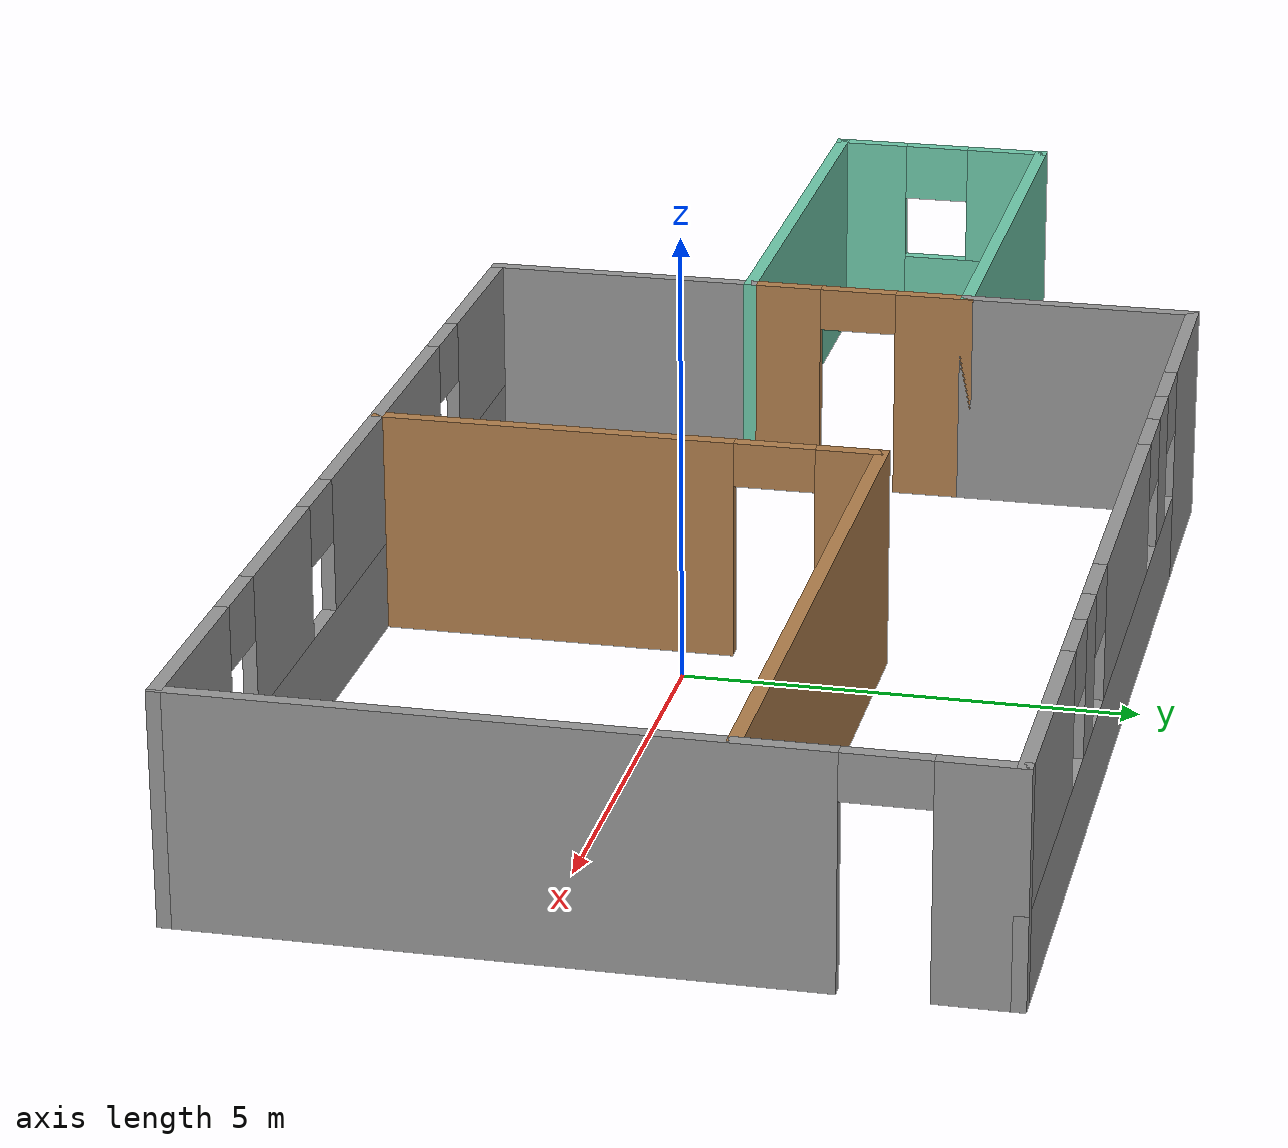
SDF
<?xml version='1.0'?>
<sdf version='1.6'>
  <model name='myworld'>
    <pose frame=''>-2.44301 0.59064 0 0 -0 0</pose>
    <link name='Wall_13'>
      <pose frame=''>2.925 4.175 0 0 -0 0</pose>
      <visual name='Wall_13_Visual_0'>
        <pose frame=''>-5.43133 0 1.25 0 -0 0</pose>
        <geometry>
          <box>
            <size>2.13733 0.15 2.5</size>
          </box>
        </geometry>
        <material>
          <script>
            <uri>file://media/materials/scripts/gazebo.material</uri>
            <name>Gazebo/Grey</name>
          </script>
          <ambient>1 1 1 1</ambient>
        </material>
        <meta>
          <layer>0</layer>
        </meta>
      </visual>
      <collision name='Wall_13_Collision_0'>
        <geometry>
          <box>
            <size>2.13733 0.15 2.5</size>
          </box>
        </geometry>
        <pose frame=''>-5.43133 0 1.25 0 -0 0</pose>
      </collision>
      <visual name='Wall_13_Visual_1'>
        <pose frame=''>1.06867 0 0.5 0 -0 0</pose>
        <geometry>
          <box>
            <size>10.8627 0.15 1</size>
          </box>
        </geometry>
        <material>
          <script>
            <uri>file://media/materials/scripts/gazebo.material</uri>
            <name>Gazebo/Grey</name>
          </script>
          <ambient>1 1 1 1</ambient>
        </material>
        <meta>
          <layer>0</layer>
        </meta>
      </visual>
      <collision name='Wall_13_Collision_1'>
        <geometry>
          <box>
            <size>10.8627 0.15 1</size>
          </box>
        </geometry>
        <pose frame=''>1.06867 0 0.5 0 -0 0</pose>
      </collision>
      <visual name='Wall_13_Visual_2'>
        <pose frame=''>-3.19681 0 1.75 0 -0 0</pose>
        <geometry>
          <box>
            <size>0.73171 0.15 1.5</size>
          </box>
        </geometry>
        <material>
          <script>
            <uri>file://media/materials/scripts/gazebo.material</uri>
            <name>Gazebo/Grey</name>
          </script>
          <ambient>1 1 1 1</ambient>
        </material>
        <meta>
          <layer>0</layer>
        </meta>
      </visual>
      <collision name='Wall_13_Collision_2'>
        <geometry>
          <box>
            <size>0.73171 0.15 1.5</size>
          </box>
        </geometry>
        <pose frame=''>-3.19681 0 1.75 0 -0 0</pose>
      </collision>
      <visual name='Wall_13_Visual_3'>
        <pose frame=''>-0.28964 0 1.75 0 -0 0</pose>
        <geometry>
          <box>
            <size>3.48263 0.15 1.5</size>
          </box>
        </geometry>
        <material>
          <script>
            <uri>file://media/materials/scripts/gazebo.material</uri>
            <name>Gazebo/Grey</name>
          </script>
          <ambient>1 1 1 1</ambient>
        </material>
        <meta>
          <layer>0</layer>
        </meta>
      </visual>
      <collision name='Wall_13_Collision_3'>
        <geometry>
          <box>
            <size>3.48263 0.15 1.5</size>
          </box>
        </geometry>
        <pose frame=''>-0.28964 0 1.75 0 -0 0</pose>
      </collision>
      <visual name='Wall_13_Visual_4'>
        <pose frame=''>2.58318 0 1.75 0 -0 0</pose>
        <geometry>
          <box>
            <size>0.663011 0.15 1.5</size>
          </box>
        </geometry>
        <material>
          <script>
            <uri>file://media/materials/scripts/gazebo.material</uri>
            <name>Gazebo/Grey</name>
          </script>
          <ambient>1 1 1 1</ambient>
        </material>
        <meta>
          <layer>0</layer>
        </meta>
      </visual>
      <collision name='Wall_13_Collision_4'>
        <geometry>
          <box>
            <size>0.663011 0.15 1.5</size>
          </box>
        </geometry>
        <pose frame=''>2.58318 0 1.75 0 -0 0</pose>
      </collision>
      <visual name='Wall_13_Visual_5'>
        <pose frame=''>5.10734 0 1.75 0 -0 0</pose>
        <geometry>
          <box>
            <size>2.78531 0.15 1.5</size>
          </box>
        </geometry>
        <material>
          <script>
            <uri>file://media/materials/scripts/gazebo.material</uri>
            <name>Gazebo/Grey</name>
          </script>
          <ambient>1 1 1 1</ambient>
        </material>
        <meta>
          <layer>0</layer>
        </meta>
      </visual>
      <collision name='Wall_13_Collision_5'>
        <geometry>
          <box>
            <size>2.78531 0.15 1.5</size>
          </box>
        </geometry>
        <pose frame=''>5.10734 0 1.75 0 -0 0</pose>
      </collision>
      <visual name='Wall_13_Visual_6'>
        <pose frame=''>-3.96267 0 2.15 0 -0 0</pose>
        <geometry>
          <box>
            <size>0.8 0.15 0.7</size>
          </box>
        </geometry>
        <material>
          <script>
            <uri>file://media/materials/scripts/gazebo.material</uri>
            <name>Gazebo/Grey</name>
          </script>
          <ambient>1 1 1 1</ambient>
        </material>
        <meta>
          <layer>0</layer>
        </meta>
      </visual>
      <collision name='Wall_13_Collision_6'>
        <geometry>
          <box>
            <size>0.8 0.15 0.7</size>
          </box>
        </geometry>
        <pose frame=''>-3.96267 0 2.15 0 -0 0</pose>
      </collision>
      <visual name='Wall_13_Visual_7'>
        <pose frame=''>-2.43096 0 2.15 0 -0 0</pose>
        <geometry>
          <box>
            <size>0.8 0.15 0.7</size>
          </box>
        </geometry>
        <material>
          <script>
            <uri>file://media/materials/scripts/gazebo.material</uri>
            <name>Gazebo/Grey</name>
          </script>
          <ambient>1 1 1 1</ambient>
        </material>
        <meta>
          <layer>0</layer>
        </meta>
      </visual>
      <collision name='Wall_13_Collision_7'>
        <geometry>
          <box>
            <size>0.8 0.15 0.7</size>
          </box>
        </geometry>
        <pose frame=''>-2.43096 0 2.15 0 -0 0</pose>
      </collision>
      <visual name='Wall_13_Visual_8'>
        <pose frame=''>1.85168 0 2.15 0 -0 0</pose>
        <geometry>
          <box>
            <size>0.8 0.15 0.7</size>
          </box>
        </geometry>
        <material>
          <script>
            <uri>file://media/materials/scripts/gazebo.material</uri>
            <name>Gazebo/Grey</name>
          </script>
          <ambient>1 1 1 1</ambient>
        </material>
        <meta>
          <layer>0</layer>
        </meta>
      </visual>
      <collision name='Wall_13_Collision_8'>
        <geometry>
          <box>
            <size>0.8 0.15 0.7</size>
          </box>
        </geometry>
        <pose frame=''>1.85168 0 2.15 0 -0 0</pose>
      </collision>
      <visual name='Wall_13_Visual_9'>
        <pose frame=''>3.31469 0 2.15 0 -0 0</pose>
        <geometry>
          <box>
            <size>0.8 0.15 0.7</size>
          </box>
        </geometry>
        <material>
          <script>
            <uri>file://media/materials/scripts/gazebo.material</uri>
            <name>Gazebo/Grey</name>
          </script>
          <ambient>1 1 1 1</ambient>
        </material>
        <meta>
          <layer>0</layer>
        </meta>
      </visual>
      <collision name='Wall_13_Collision_9'>
        <geometry>
          <box>
            <size>0.8 0.15 0.7</size>
          </box>
        </geometry>
        <pose frame=''>3.31469 0 2.15 0 -0 0</pose>
      </collision>
    </link>
    <link name='Wall_14'>
      <pose frame=''>9.35 0 0 0 0 -1.5708</pose>
      <visual name='Wall_14_Visual_0'>
        <pose frame=''>-3.79422 0 1.25 0 -0 0</pose>
        <geometry>
          <box>
            <size>0.911563 0.15 2.5</size>
          </box>
        </geometry>
        <material>
          <script>
            <uri>file://media/materials/scripts/gazebo.material</uri>
            <name>Gazebo/Grey</name>
          </script>
          <ambient>1 1 1 1</ambient>
        </material>
        <meta>
          <layer>0</layer>
        </meta>
      </visual>
      <collision name='Wall_14_Collision_0'>
        <geometry>
          <box>
            <size>0.911563 0.15 2.5</size>
          </box>
        </geometry>
        <pose frame=''>-3.79422 0 1.25 0 -0 0</pose>
      </collision>
      <visual name='Wall_14_Visual_1'>
        <pose frame=''>0.905782 0 1.25 0 -0 0</pose>
        <geometry>
          <box>
            <size>6.68844 0.15 2.5</size>
          </box>
        </geometry>
        <material>
          <script>
            <uri>file://media/materials/scripts/gazebo.material</uri>
            <name>Gazebo/Grey</name>
          </script>
          <ambient>1 1 1 1</ambient>
        </material>
        <meta>
          <layer>0</layer>
        </meta>
      </visual>
      <collision name='Wall_14_Collision_1'>
        <geometry>
          <box>
            <size>6.68844 0.15 2.5</size>
          </box>
        </geometry>
        <pose frame=''>0.905782 0 1.25 0 -0 0</pose>
      </collision>
      <visual name='Wall_14_Visual_2'>
        <pose frame=''>-2.88844 0 2.25 0 -0 0</pose>
        <geometry>
          <box>
            <size>0.9 0.15 0.5</size>
          </box>
        </geometry>
        <material>
          <script>
            <uri>file://media/materials/scripts/gazebo.material</uri>
            <name>Gazebo/Grey</name>
          </script>
          <ambient>1 1 1 1</ambient>
        </material>
        <meta>
          <layer>0</layer>
        </meta>
      </visual>
      <collision name='Wall_14_Collision_2'>
        <geometry>
          <box>
            <size>0.9 0.15 0.5</size>
          </box>
        </geometry>
        <pose frame=''>-2.88844 0 2.25 0 -0 0</pose>
      </collision>
    </link>
    <link name='Wall_15'>
      <pose frame=''>2.925 -4.175 0 0 -0 3.14159</pose>
      <visual name='Wall_15_Visual_0'>
        <pose frame=''>-5.43557 0 1.25 0 -0 0</pose>
        <geometry>
          <box>
            <size>2.12887 0.15 2.5</size>
          </box>
        </geometry>
        <material>
          <script>
            <uri>file://media/materials/scripts/gazebo.material</uri>
            <name>Gazebo/Grey</name>
          </script>
          <ambient>1 1 1 1</ambient>
        </material>
        <meta>
          <layer>0</layer>
        </meta>
      </visual>
      <collision name='Wall_15_Collision_0'>
        <geometry>
          <box>
            <size>2.12887 0.15 2.5</size>
          </box>
        </geometry>
        <pose frame=''>-5.43557 0 1.25 0 -0 0</pose>
      </collision>
      <visual name='Wall_15_Visual_1'>
        <pose frame=''>1.06443 0 0.5 0 -0 0</pose>
        <geometry>
          <box>
            <size>10.8711 0.15 1</size>
          </box>
        </geometry>
        <material>
          <script>
            <uri>file://media/materials/scripts/gazebo.material</uri>
            <name>Gazebo/Grey</name>
          </script>
          <ambient>1 1 1 1</ambient>
        </material>
        <meta>
          <layer>0</layer>
        </meta>
      </visual>
      <collision name='Wall_15_Collision_1'>
        <geometry>
          <box>
            <size>10.8711 0.15 1</size>
          </box>
        </geometry>
        <pose frame=''>1.06443 0 0.5 0 -0 0</pose>
      </collision>
      <visual name='Wall_15_Visual_2'>
        <pose frame=''>-2.59486 0 1.75 0 -0 0</pose>
        <geometry>
          <box>
            <size>1.95254 0.15 1.5</size>
          </box>
        </geometry>
        <material>
          <script>
            <uri>file://media/materials/scripts/gazebo.material</uri>
            <name>Gazebo/Grey</name>
          </script>
          <ambient>1 1 1 1</ambient>
        </material>
        <meta>
          <layer>0</layer>
        </meta>
      </visual>
      <collision name='Wall_15_Collision_2'>
        <geometry>
          <box>
            <size>1.95254 0.15 1.5</size>
          </box>
        </geometry>
        <pose frame=''>-2.59486 0 1.75 0 -0 0</pose>
      </collision>
      <visual name='Wall_15_Visual_3'>
        <pose frame=''>1.32578 0 1.75 0 -0 0</pose>
        <geometry>
          <box>
            <size>4.28873 0.15 1.5</size>
          </box>
        </geometry>
        <material>
          <script>
            <uri>file://media/materials/scripts/gazebo.material</uri>
            <name>Gazebo/Grey</name>
          </script>
          <ambient>1 1 1 1</ambient>
        </material>
        <meta>
          <layer>0</layer>
        </meta>
      </visual>
      <collision name='Wall_15_Collision_3'>
        <geometry>
          <box>
            <size>4.28873 0.15 1.5</size>
          </box>
        </geometry>
        <pose frame=''>1.32578 0 1.75 0 -0 0</pose>
      </collision>
      <visual name='Wall_15_Visual_4'>
        <pose frame=''>5.38507 0 1.75 0 -0 0</pose>
        <geometry>
          <box>
            <size>2.22986 0.15 1.5</size>
          </box>
        </geometry>
        <material>
          <script>
            <uri>file://media/materials/scripts/gazebo.material</uri>
            <name>Gazebo/Grey</name>
          </script>
          <ambient>1 1 1 1</ambient>
        </material>
        <meta>
          <layer>0</layer>
        </meta>
      </visual>
      <collision name='Wall_15_Collision_4'>
        <geometry>
          <box>
            <size>2.22986 0.15 1.5</size>
          </box>
        </geometry>
        <pose frame=''>5.38507 0 1.75 0 -0 0</pose>
      </collision>
      <visual name='Wall_15_Visual_5'>
        <pose frame=''>-3.97113 0 2.15 0 -0 0</pose>
        <geometry>
          <box>
            <size>0.8 0.15 0.7</size>
          </box>
        </geometry>
        <material>
          <script>
            <uri>file://media/materials/scripts/gazebo.material</uri>
            <name>Gazebo/Grey</name>
          </script>
          <ambient>1 1 1 1</ambient>
        </material>
        <meta>
          <layer>0</layer>
        </meta>
      </visual>
      <collision name='Wall_15_Collision_5'>
        <geometry>
          <box>
            <size>0.8 0.15 0.7</size>
          </box>
        </geometry>
        <pose frame=''>-3.97113 0 2.15 0 -0 0</pose>
      </collision>
      <visual name='Wall_15_Visual_6'>
        <pose frame=''>-1.21859 0 2.15 0 -0 0</pose>
        <geometry>
          <box>
            <size>0.8 0.15 0.7</size>
          </box>
        </geometry>
        <material>
          <script>
            <uri>file://media/materials/scripts/gazebo.material</uri>
            <name>Gazebo/Grey</name>
          </script>
          <ambient>1 1 1 1</ambient>
        </material>
        <meta>
          <layer>0</layer>
        </meta>
      </visual>
      <collision name='Wall_15_Collision_6'>
        <geometry>
          <box>
            <size>0.8 0.15 0.7</size>
          </box>
        </geometry>
        <pose frame=''>-1.21859 0 2.15 0 -0 0</pose>
      </collision>
      <visual name='Wall_15_Visual_7'>
        <pose frame=''>3.87014 0 2.15 0 -0 0</pose>
        <geometry>
          <box>
            <size>0.8 0.15 0.7</size>
          </box>
        </geometry>
        <material>
          <script>
            <uri>file://media/materials/scripts/gazebo.material</uri>
            <name>Gazebo/Grey</name>
          </script>
          <ambient>1 1 1 1</ambient>
        </material>
        <meta>
          <layer>0</layer>
        </meta>
      </visual>
      <collision name='Wall_15_Collision_7'>
        <geometry>
          <box>
            <size>0.8 0.15 0.7</size>
          </box>
        </geometry>
        <pose frame=''>3.87014 0 2.15 0 -0 0</pose>
      </collision>
    </link>
    <link name='Wall_16'>
      <collision name='Wall_16_Collision'>
        <geometry>
          <box>
            <size>3.25 0.15 2.5</size>
          </box>
        </geometry>
        <pose frame=''>0 0 1.25 0 -0 0</pose>
      </collision>
      <visual name='Wall_16_Visual'>
        <pose frame=''>0 0 1.25 0 -0 0</pose>
        <geometry>
          <box>
            <size>3.25 0.15 2.5</size>
          </box>
        </geometry>
        <material>
          <script>
            <uri>file://media/materials/scripts/gazebo.material</uri>
            <name>Gazebo/Grey</name>
          </script>
          <ambient>1 1 1 1</ambient>
        </material>
        <meta>
          <layer>0</layer>
        </meta>
      </visual>
      <pose frame=''>-3.5 -2.625 0 0 -0 1.5708</pose>
    </link>
    <link name='Wall_17'>
      <collision name='Wall_17_Collision'>
        <geometry>
          <box>
            <size>6 0.15 2.5</size>
          </box>
        </geometry>
        <pose frame=''>0 0 1.25 0 -0 0</pose>
      </collision>
      <visual name='Wall_17_Visual'>
        <pose frame=''>0 0 1.25 0 -0 0</pose>
        <geometry>
          <box>
            <size>6 0.15 2.5</size>
          </box>
        </geometry>
        <material>
          <script>
            <uri>file://media/materials/scripts/gazebo.material</uri>
            <name>Gazebo/Grey</name>
          </script>
          <ambient>0.435294 0.796078 0.67451 1</ambient>
        </material>
        <meta>
          <layer>0</layer>
        </meta>
      </visual>
      <pose frame=''>-6.425 -1.075 0 0 -0 3.14159</pose>
    </link>
    <link name='Wall_18'>
      <pose frame=''>-9.35 0.225 0 0 -0 1.5708</pose>
      <visual name='Wall_18_Visual_0'>
        <pose frame=''>-0.912392 0 1.25 0 -0 0</pose>
        <geometry>
          <box>
            <size>0.925217 0.15 2.5</size>
          </box>
        </geometry>
        <material>
          <script>
            <uri>file://media/materials/scripts/gazebo.material</uri>
            <name>Gazebo/Grey</name>
          </script>
          <ambient>0.435294 0.796078 0.67451 1</ambient>
        </material>
        <meta>
          <layer>0</layer>
        </meta>
      </visual>
      <collision name='Wall_18_Collision_0'>
        <geometry>
          <box>
            <size>0.925217 0.15 2.5</size>
          </box>
        </geometry>
        <pose frame=''>-0.912392 0 1.25 0 -0 0</pose>
      </collision>
      <visual name='Wall_18_Visual_1'>
        <pose frame=''>0.462608 0 0.5 0 -0 0</pose>
        <geometry>
          <box>
            <size>1.82478 0.15 1</size>
          </box>
        </geometry>
        <material>
          <script>
            <uri>file://media/materials/scripts/gazebo.material</uri>
            <name>Gazebo/Grey</name>
          </script>
          <ambient>0.435294 0.796078 0.67451 1</ambient>
        </material>
        <meta>
          <layer>0</layer>
        </meta>
      </visual>
      <collision name='Wall_18_Collision_1'>
        <geometry>
          <box>
            <size>1.82478 0.15 1</size>
          </box>
        </geometry>
        <pose frame=''>0.462608 0 0.5 0 -0 0</pose>
      </collision>
      <visual name='Wall_18_Visual_2'>
        <pose frame=''>0.862608 0 1.75 0 -0 0</pose>
        <geometry>
          <box>
            <size>1.02478 0.15 1.5</size>
          </box>
        </geometry>
        <material>
          <script>
            <uri>file://media/materials/scripts/gazebo.material</uri>
            <name>Gazebo/Grey</name>
          </script>
          <ambient>0.435294 0.796078 0.67451 1</ambient>
        </material>
        <meta>
          <layer>0</layer>
        </meta>
      </visual>
      <collision name='Wall_18_Collision_2'>
        <geometry>
          <box>
            <size>1.02478 0.15 1.5</size>
          </box>
        </geometry>
        <pose frame=''>0.862608 0 1.75 0 -0 0</pose>
      </collision>
      <visual name='Wall_18_Visual_3'>
        <pose frame=''>-0.049783 0 2.15 0 -0 0</pose>
        <geometry>
          <box>
            <size>0.8 0.15 0.7</size>
          </box>
        </geometry>
        <material>
          <script>
            <uri>file://media/materials/scripts/gazebo.material</uri>
            <name>Gazebo/Grey</name>
          </script>
          <ambient>0.435294 0.796078 0.67451 1</ambient>
        </material>
        <meta>
          <layer>0</layer>
        </meta>
      </visual>
      <collision name='Wall_18_Collision_3'>
        <geometry>
          <box>
            <size>0.8 0.15 0.7</size>
          </box>
        </geometry>
        <pose frame=''>-0.049783 0 2.15 0 -0 0</pose>
      </collision>
    </link>
    <link name='Wall_23'>
      <collision name='Wall_23_Collision'>
        <geometry>
          <box>
            <size>6 0.15 2.5</size>
          </box>
        </geometry>
        <pose frame=''>0 0 1.25 0 -0 0</pose>
      </collision>
      <visual name='Wall_23_Visual'>
        <pose frame=''>0 0 1.25 0 -0 0</pose>
        <geometry>
          <box>
            <size>6 0.15 2.5</size>
          </box>
        </geometry>
        <material>
          <script>
            <uri>file://media/materials/scripts/gazebo.material</uri>
            <name>Gazebo/Grey</name>
          </script>
          <ambient>0.435294 0.796078 0.67451 1</ambient>
        </material>
        <meta>
          <layer>0</layer>
        </meta>
      </visual>
      <pose frame=''>-6.425 1.525 0 0 -0 0</pose>
    </link>
    <link name='Wall_24'>
      <collision name='Wall_24_Collision'>
        <geometry>
          <box>
            <size>2.8 0.15 2.5</size>
          </box>
        </geometry>
        <pose frame=''>0 0 1.25 0 -0 0</pose>
      </collision>
      <visual name='Wall_24_Visual'>
        <pose frame=''>0 0 1.25 0 -0 0</pose>
        <geometry>
          <box>
            <size>2.8 0.15 2.5</size>
          </box>
        </geometry>
        <material>
          <script>
            <uri>file://media/materials/scripts/gazebo.material</uri>
            <name>Gazebo/Grey</name>
          </script>
          <ambient>1 1 1 1</ambient>
        </material>
        <meta>
          <layer>0</layer>
        </meta>
      </visual>
      <pose frame=''>-3.5 2.85 0 0 -0 1.5708</pose>
    </link>
    <link name='Wall_26'>
      <collision name='Wall_26_Collision'>
        <geometry>
          <box>
            <size>7.75 0.15 2.5</size>
          </box>
        </geometry>
        <pose frame=''>0 0 1.25 0 -0 0</pose>
      </collision>
      <visual name='Wall_26_Visual'>
        <pose frame=''>0 0 1.25 0 -0 0</pose>
        <geometry>
          <box>
            <size>7.75 0.15 2.5</size>
          </box>
        </geometry>
        <material>
          <script>
            <uri>file://media/materials/scripts/gazebo.material</uri>
            <name>Gazebo/Wood</name>
          </script>
          <ambient>1 1 1 1</ambient>
        </material>
        <meta>
          <layer>0</layer>
        </meta>
      </visual>
      <pose frame=''>5.52531 1.45203 0 0 -0 3.14159</pose>
    </link>
    <link name='Wall_27'>
      <pose frame=''>1.72531 -1.34797 0 0 0 -1.5708</pose>
      <visual name='Wall_27_Visual_0'>
        <pose frame=''>-2.4773 0 1.25 0 -0 0</pose>
        <geometry>
          <box>
            <size>0.795409 0.15 2.5</size>
          </box>
        </geometry>
        <material>
          <script>
            <uri>file://media/materials/scripts/gazebo.material</uri>
            <name>Gazebo/Wood</name>
          </script>
          <ambient>1 1 1 1</ambient>
        </material>
        <meta>
          <layer>0</layer>
        </meta>
      </visual>
      <collision name='Wall_27_Collision_0'>
        <geometry>
          <box>
            <size>0.795409 0.15 2.5</size>
          </box>
        </geometry>
        <pose frame=''>-2.4773 0 1.25 0 -0 0</pose>
      </collision>
      <visual name='Wall_27_Visual_1'>
        <pose frame=''>0.847704 0 1.25 0 -0 0</pose>
        <geometry>
          <box>
            <size>4.05459 0.15 2.5</size>
          </box>
        </geometry>
        <material>
          <script>
            <uri>file://media/materials/scripts/gazebo.material</uri>
            <name>Gazebo/Wood</name>
          </script>
          <ambient>1 1 1 1</ambient>
        </material>
        <meta>
          <layer>0</layer>
        </meta>
      </visual>
      <collision name='Wall_27_Collision_1'>
        <geometry>
          <box>
            <size>4.05459 0.15 2.5</size>
          </box>
        </geometry>
        <pose frame=''>0.847704 0 1.25 0 -0 0</pose>
      </collision>
      <visual name='Wall_27_Visual_2'>
        <pose frame=''>-1.62959 0 2.25 0 -0 0</pose>
        <geometry>
          <box>
            <size>0.9 0.15 0.5</size>
          </box>
        </geometry>
        <material>
          <script>
            <uri>file://media/materials/scripts/gazebo.material</uri>
            <name>Gazebo/Wood</name>
          </script>
          <ambient>1 1 1 1</ambient>
        </material>
        <meta>
          <layer>0</layer>
        </meta>
      </visual>
      <collision name='Wall_27_Collision_2'>
        <geometry>
          <box>
            <size>0.9 0.15 0.5</size>
          </box>
        </geometry>
        <pose frame=''>-1.62959 0 2.25 0 -0 0</pose>
      </collision>
    </link>
    <link name='Wall_29'>
      <pose frame=''>-3.5 0.225 0 0 0 -1.5708</pose>
      <visual name='Wall_29_Visual_0'>
        <pose frame=''>-0.912712 0 1.25 0 -0 0</pose>
        <geometry>
          <box>
            <size>0.924576 0.15 2.5</size>
          </box>
        </geometry>
        <material>
          <script>
            <uri>file://media/materials/scripts/gazebo.material</uri>
            <name>Gazebo/Wood</name>
          </script>
          <ambient>1 1 1 1</ambient>
        </material>
        <meta>
          <layer>0</layer>
        </meta>
      </visual>
      <collision name='Wall_29_Collision_0'>
        <geometry>
          <box>
            <size>0.924576 0.15 2.5</size>
          </box>
        </geometry>
        <pose frame=''>-0.912712 0 1.25 0 -0 0</pose>
      </collision>
      <visual name='Wall_29_Visual_1'>
        <pose frame=''>0.912288 0 1.25 0 -0 0</pose>
        <geometry>
          <box>
            <size>0.925424 0.15 2.5</size>
          </box>
        </geometry>
        <material>
          <script>
            <uri>file://media/materials/scripts/gazebo.material</uri>
            <name>Gazebo/Wood</name>
          </script>
          <ambient>1 1 1 1</ambient>
        </material>
        <meta>
          <layer>0</layer>
        </meta>
      </visual>
      <collision name='Wall_29_Collision_1'>
        <geometry>
          <box>
            <size>0.925424 0.15 2.5</size>
          </box>
        </geometry>
        <pose frame=''>0.912288 0 1.25 0 -0 0</pose>
      </collision>
      <visual name='Wall_29_Visual_2'>
        <pose frame=''>-0.000424 0 2.25 0 -0 0</pose>
        <geometry>
          <box>
            <size>0.9 0.15 0.5</size>
          </box>
        </geometry>
        <material>
          <script>
            <uri>file://media/materials/scripts/gazebo.material</uri>
            <name>Gazebo/Wood</name>
          </script>
          <ambient>1 1 1 1</ambient>
        </material>
        <meta>
          <layer>0</layer>
        </meta>
      </visual>
      <collision name='Wall_29_Collision_2'>
        <geometry>
          <box>
            <size>0.9 0.15 0.5</size>
          </box>
        </geometry>
        <pose frame=''>-0.000424 0 2.25 0 -0 0</pose>
      </collision>
    </link>
    <static>1</static>
  </model>
</sdf>
